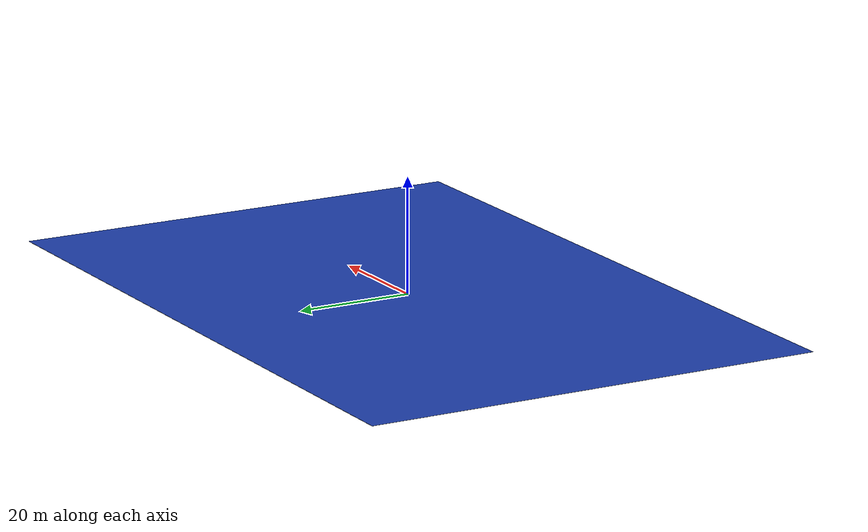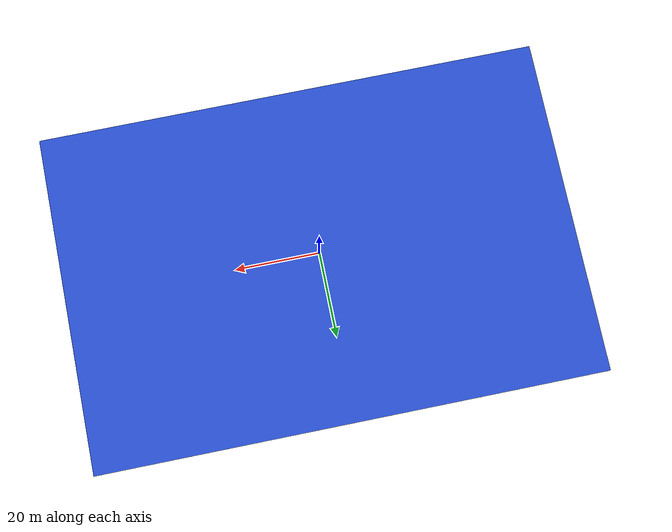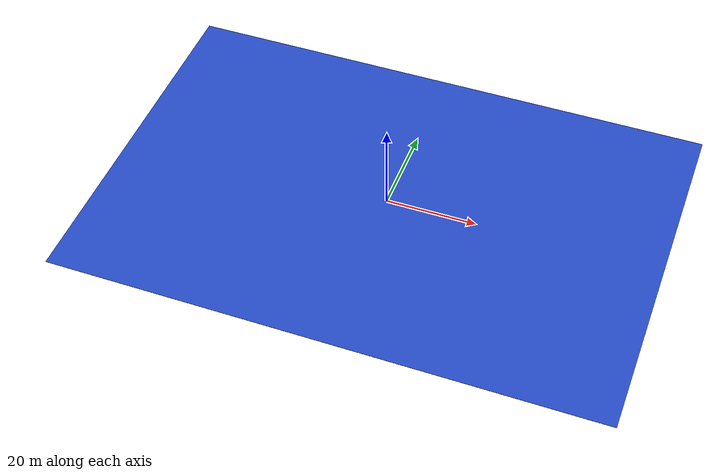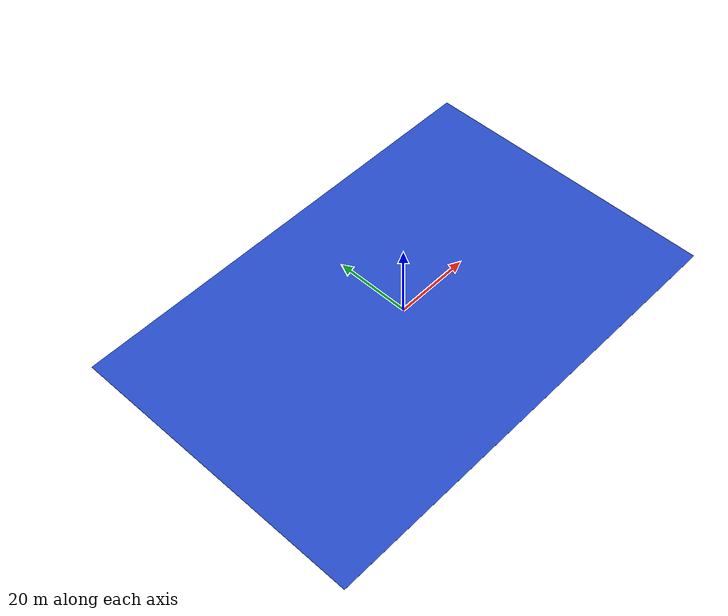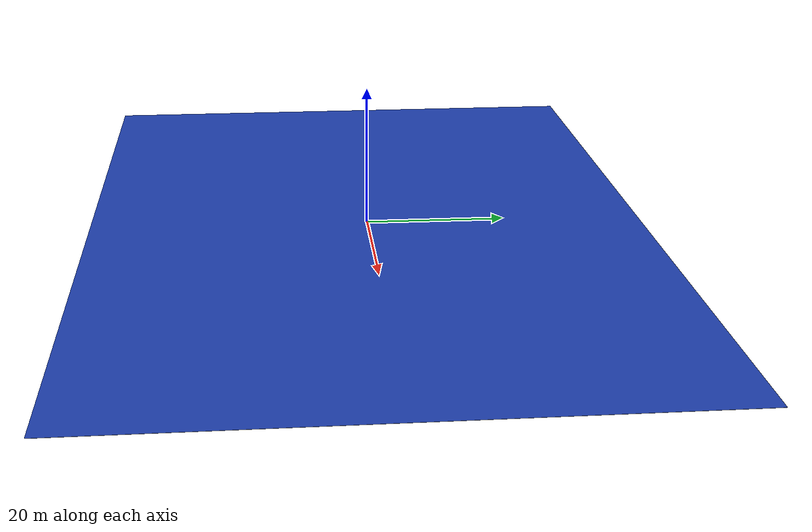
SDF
<?xml version="1.0" ?>
<sdf version="1.5">
  <model name="blue_ground">
    <static>true</static>
    <link name="ground">
      <collision name="groundc">
        <geometry>
          <box>
            <size>120 80 0.03</size>
          </box>
        </geometry>
      </collision>
      <visual name="groundv">
        <geometry>
          <box>
            <size>120 80 0.03</size>
          </box>
        </geometry>
        <material>
          <script>
            <uri>model://blue_ground/materials/scripts</uri>
            <uri>model://blue_ground/materials/textures</uri>
            <name>vrc/blue_ground</name>
          </script>
        </material>
      </visual>
    </link>

  </model>
</sdf>
